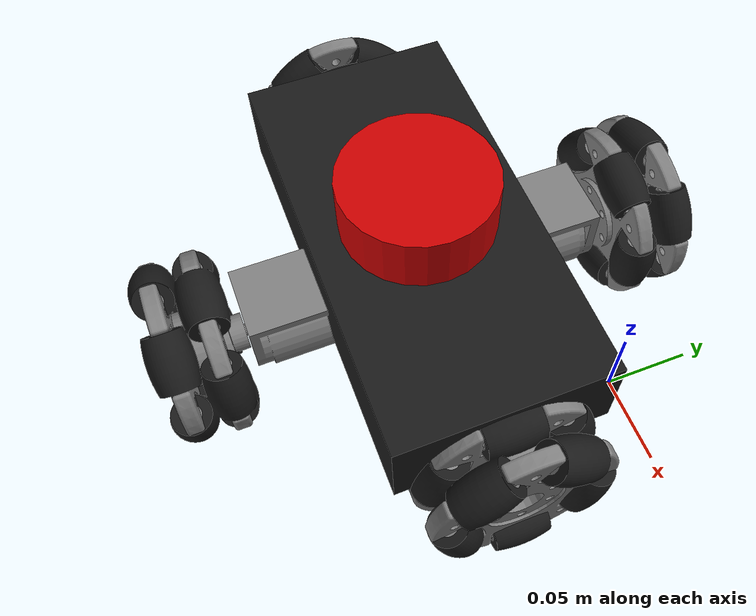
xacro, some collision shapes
<?xml version="1.0"?>
<robot xmlns:xacro="http://www.ros.org/wiki/xacro" name="robot">

  <!-- Include inertial macros (opsional, karena sudah inline di robot_core_highres) -->
  <xacro:include filename="inertial_macros.xacro"/>

  <!-- Core robot definition dengan visual, collision, inertial -->
  <xacro:include filename="robot_core_highres.xacro"/>

</robot>

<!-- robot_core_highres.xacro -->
<robot xmlns:xacro="http://www.ros.org/wiki/xacro">

  <!-- PROPERTIES                                                         -->
  <xacro:property name="scale"         value="2.0"/>

  <!-- Chassis -->
  <xacro:property name="chassis_x"     value="${0.14*scale}"/>
  <xacro:property name="chassis_y"     value="${0.07*scale}"/>
  <xacro:property name="chassis_z"     value="${0.03*scale}"/>
  <xacro:property name="chassis_mass"  value="5.0"/>

  <!-- Wheel -->
  <xacro:property name="wheel_radius"  value="${0.0165*scale}"/>
  <xacro:property name="wheel_width"   value="${0.02*scale}"/>
  <xacro:property name="wheel_mass"    value="0.3"/>

  <!-- Motor (massa saja, tidak ada collision) -->
  <xacro:property name="motor_x"       value="${0.04*scale}"/>
  <xacro:property name="motor_y"       value="${0.04*scale}"/>
  <xacro:property name="motor_z"       value="${0.04*scale}"/>
  <xacro:property name="motor_mass"    value="0.2"/>

  <xacro:property name="footprint_cx"  value="-0.13246"/>
  <xacro:property name="footprint_cy"  value="-0.06868"/>

  <!-- INERTIA MACROS                                                     -->
  <xacro:macro name="inertial_box" params="mass x y z *origin">
    <inertial>
      <xacro:insert_block name="origin"/>
      <mass value="${mass}"/>
      <inertia ixx="${(1/12)*mass*(y*y+z*z)}" ixy="0" ixz="0"
               iyy="${(1/12)*mass*(x*x+z*z)}" iyz="0"
               izz="${(1/12)*mass*(x*x+y*y)}"/>
    </inertial>
  </xacro:macro>

  <xacro:macro name="inertial_cylinder" params="mass length radius *origin">
    <inertial>
      <xacro:insert_block name="origin"/>
      <mass value="${mass}"/>
      <inertia ixx="${(1/12)*mass*(3*radius*radius+length*length)}" ixy="0" ixz="0"
               iyy="${(1/12)*mass*(3*radius*radius+length*length)}" iyz="0"
               izz="${(1/2)*mass*(radius*radius)}"/>
    </inertial>
  </xacro:macro>

  <!-- WHEEL GAZEBO MACRO                                                 -->
  <xacro:macro name="wheel_gazebo" params="link_name fdir mat">
    <gazebo reference="${link_name}">
      <mu1>1.0</mu1>
      <mu2>1.0</mu2>
      <fdir1>${fdir}</fdir1>
      <minDepth>0.001</minDepth>
      <kp>1000000</kp>
      <kd>1.0</kd>
      <gravity>true</gravity>
      <material>${mat}</material>
    </gazebo>
  </xacro:macro>

  <!-- MATERIALS                                                          -->
  <material name="black"><color rgba="0.1 0.1 0.1 1"/></material>
  <material name="grey"><color rgba="0.5 0.5 0.5 1"/></material>
  <material name="white"><color rgba="1.0 1.0 1.0 1"/></material>
  <material name="red"><color rgba="0.8 0.0 0.0 1"/></material>

  <!-- BASE_LINK (dummy link -  tidak ada mass/collision)                  -->
  <link name="base_link"/>

  <!-- CHASSIS                                                            -->
  <joint name="chassis_joint" type="fixed">
    <parent link="base_link"/>
    <child link="chassis"/>
    <origin xyz="0 0 0" rpy="0 0 0"/>
  </joint>

  <link name="chassis">
    <visual>
      <origin xyz="0 0 0" rpy="0 0 0"/>
      <geometry>
        <mesh filename="file:///home/ronnigm/astar_ws/src/robot_description/meshes/base_link.STL"
              scale="${scale} ${scale} ${scale}"/>
      </geometry>
      <material name="black"/>
    </visual>

    <collision>
      <origin xyz="${footprint_cx} ${footprint_cy} 0" rpy="0 0 0"/>
      <geometry>
        <box size="${chassis_x} ${chassis_y} ${chassis_z}"/>
      </geometry>
    </collision>

    <inertial>
      <origin xyz="${footprint_cx} ${footprint_cy} 0" rpy="0 0 0"/>
      <mass value="${chassis_mass}"/>
      <inertia ixx="0.05" ixy="0.0" ixz="0.0"
               iyy="0.10" iyz="0.0"
               izz="0.10"/>
    </inertial>
  </link>

  <gazebo reference="chassis">
    <material>Gazebo/DarkGrey</material>
    <gravity>true</gravity>
    <linearDamping>0.5</linearDamping>
    <angularDamping>0.5</angularDamping>
  </gazebo>

  <!-- LIDAR                                                              -->
  <link name="laser">
    <visual>
      <origin xyz="0 0 0" rpy="0 0 0"/>
      <geometry>
        <cylinder radius="${0.025*scale}" length="${0.02*scale}"/>
      </geometry>
      <material name="red"/>
    </visual>
    <!-- TIDAK ADA COLLISION -  disengaja untuk mencegah extra constraint -->
    <inertial>
      <origin xyz="0 0 0" rpy="0 0 0"/>
      <mass value="0.1"/>
      <inertia ixx="0.0001" ixy="0" ixz="0"
               iyy="0.0001" iyz="0"
               izz="0.0001"/>
    </inertial>
  </link>

  <joint name="laser_joint" type="fixed">
    <parent link="chassis"/>   <!-- parent = chassis, bukan base_link -->
    <child link="laser"/>
    <origin xyz="${footprint_cx} ${footprint_cy} 0.05" rpy="0 0 0"/>
    <!--
    rpy="0 0 0": lidar scan +X = depan robot.
    Jika di RViz scan terlihat terbalik 180deg: ganti rpy="0 0 3.14159"
    Jika di RViz scan terlihat rotasi 90deg:   ganti rpy="0 0 1.5708"
    -->
  </joint>

  <gazebo reference="laser">
    <material>Gazebo/Red</material>
    <gravity>false</gravity>  <!-- Lidar fixed ke chassis, gravity = tidak perlu -->
    <sensor name="lidar" type="ray">
      <pose>0 0 0 0 0 0</pose>
      <visualize>true</visualize>
      <update_rate>5</update_rate>
      <range>
        <min>0.1</min>
        <max>5.0</max>
      </range>
      <ray>
        <scan>
          <horizontal>
            <samples>360</samples>
            <resolution>1</resolution>
            <min_angle>-3.14159265</min_angle>
            <max_angle>3.14159265</max_angle>
          </horizontal>
        </scan>
        <range>
          <min>0.12</min>
          <max>8.0</max>
          <resolution>0.01</resolution>
        </range>
        <noise>
          <type>gaussian</type>
          <mean>0.0</mean>
          <stddev>0.005</stddev>
        </noise>
      </ray>
      <plugin name="laser_controller" filename="libgazebo_ros_ray_sensor.so">
        <ros>
          <argument>~/out:=scan</argument>
        </ros>
        <output_type>sensor_msgs/LaserScan</output_type>
        <frame_name>laser</frame_name>
      </plugin>
    </sensor>
  </gazebo>

  <!-- MOTOR 1 -  X- (KIRI DEPAN)                                         -->
  <joint name="motor1_joint" type="fixed">
    <parent link="chassis"/>
    <child link="motor1"/>
    <origin xyz="${-0.10447*scale} ${-0.034453*scale} 0" rpy="0 0 0"/>
  </joint>

  <!-- Motor: visual saja, TIDAK ADA collision (motor tidak menyentuh ground) -->
  <link name="motor1">
    <visual>
      <origin xyz="0 0 0" rpy="0 0 0"/>
      <geometry>
        <mesh filename="file:///home/ronnigm/astar_ws/src/robot_description/meshes/motor1_Link.STL"
              scale="${scale} ${scale} ${scale}"/>
      </geometry>
      <material name="grey"/>
    </visual>
    <xacro:inertial_box mass="${motor_mass}" x="${motor_x}" y="${motor_y}" z="${motor_z}">
      <origin xyz="0 0 0" rpy="0 0 0"/>
    </xacro:inertial_box>
  </link>

  <gazebo reference="motor1">
    <material>Gazebo/Grey</material>
    <gravity>true</gravity>
  </gazebo>

  <joint name="wheel1_joint" type="continuous">
    <parent link="motor1"/>
    <child link="wheel1"/>
    <origin xyz="${-0.0305*scale} 0 ${-0.0165*scale}" rpy="-1.5708 0 1.5708"/>
    <axis xyz="0 0 1"/>
    <dynamics damping="0.05" friction="0.0"/>
  </joint>

  <link name="wheel1">
    <visual>
      <origin xyz="0 0 0" rpy="0 0 0"/>
      <geometry>
        <mesh filename="file:///home/ronnigm/astar_ws/src/robot_description/meshes/wheel1_Link.STL"
              scale="${scale} ${scale} ${scale}"/>
      </geometry>
      <material name="grey"/>
    </visual>
    <!-- Wheel: SATU-SATUNYA collision body yang menyentuh ground -->
    <collision>
      <origin xyz="0 0 0" rpy="0 0 0"/>
      <geometry>
        <cylinder radius="${wheel_radius}" length="${wheel_width}"/>
      </geometry>
    </collision>
    <xacro:inertial_cylinder mass="${wheel_mass}" length="${wheel_width}" radius="${wheel_radius}">
      <origin xyz="0 0 0" rpy="0 0 0"/>
    </xacro:inertial_cylinder>
  </link>

  <!-- Rubber: visual + inertial saja, ZERO collision (lihat BUG-A fix) -->
  <joint name="rubber1_joint" type="fixed">
    <parent link="wheel1"/>
    <child link="rubber1"/>
    <origin xyz="0 0 0" rpy="0 0 0"/>
  </joint>

  <link name="rubber1">
    <visual>
      <origin xyz="0 0 0" rpy="0 0 0"/>
      <geometry>
        <mesh filename="file:///home/ronnigm/astar_ws/src/robot_description/meshes/rubber1_Link.STL"
              scale="${scale} ${scale} ${scale}"/>
      </geometry>
      <material name="black"/>
    </visual>
    <!-- TIDAK ADA COLLISION pada rubber -  mencegah double constraint -->
    <inertial>
      <origin xyz="0 0 0" rpy="0 0 0"/>
      <mass value="0.05"/>
      <inertia ixx="0.00002" ixy="0" ixz="0"
               iyy="0.00002" iyz="0"
               izz="0.00004"/>
    </inertial>
  </link>

  <xacro:wheel_gazebo link_name="wheel1" fdir="1 0 0" mat="Gazebo/Grey"/>
  <gazebo reference="rubber1"><material>Gazebo/Black</material></gazebo>

  <!-- MOTOR 2 -  X+ (KANAN DEPAN)                                        -->
  <joint name="motor2_joint" type="fixed">
    <parent link="chassis"/>
    <child link="motor2"/>
    <origin xyz="${-0.02747*scale} ${-0.034453*scale} 0" rpy="0 0 0"/>
  </joint>

  <link name="motor2">
    <visual>
      <origin xyz="0 0 0" rpy="0 0 0"/>
      <geometry>
        <mesh filename="file:///home/ronnigm/astar_ws/src/robot_description/meshes/motor2_Link.STL"
              scale="${scale} ${scale} ${scale}"/>
      </geometry>
      <material name="grey"/>
    </visual>
    <xacro:inertial_box mass="${motor_mass}" x="${motor_x}" y="${motor_y}" z="${motor_z}">
      <origin xyz="0 0 0" rpy="0 0 0"/>
    </xacro:inertial_box>
  </link>

  <gazebo reference="motor2"><material>Gazebo/Grey</material><gravity>true</gravity></gazebo>

  <joint name="wheel2_joint" type="continuous">
    <parent link="motor2"/>
    <child link="wheel2"/>
    <origin xyz="${0.0305*scale} 0 ${-0.0165*scale}" rpy="1.5708 0 1.5708"/>
    <axis xyz="0 0 1"/>
    <dynamics damping="0.05" friction="0.0"/>
  </joint>

  <link name="wheel2">
    <visual>
      <origin xyz="0 0 0" rpy="0 0 0"/>
      <geometry>
        <mesh filename="file:///home/ronnigm/astar_ws/src/robot_description/meshes/wheel2_Link.STL"
              scale="${scale} ${scale} ${scale}"/>
      </geometry>
      <material name="grey"/>
    </visual>
    <collision>
      <origin xyz="0 0 0" rpy="0 0 0"/>
      <geometry>
        <cylinder radius="${wheel_radius}" length="${wheel_width}"/>
      </geometry>
    </collision>
    <xacro:inertial_cylinder mass="${wheel_mass}" length="${wheel_width}" radius="${wheel_radius}">
      <origin xyz="0 0 0" rpy="0 0 0"/>
    </xacro:inertial_cylinder>
  </link>

  <joint name="rubber2_joint" type="fixed">
    <parent link="wheel2"/>
    <child link="rubber2"/>
    <origin xyz="0 0 0" rpy="0 0 0"/>
  </joint>

  <link name="rubber2">
    <visual>
      <origin xyz="0 0 0" rpy="0 0 0"/>
      <geometry>
        <mesh filename="file:///home/ronnigm/astar_ws/src/robot_description/meshes/rubber2_Link.STL"
              scale="${scale} ${scale} ${scale}"/>
      </geometry>
      <material name="black"/>
    </visual>
    <inertial>
      <origin xyz="0 0 0" rpy="0 0 0"/>
      <mass value="0.05"/>
      <inertia ixx="0.00002" ixy="0" ixz="0"
               iyy="0.00002" iyz="0"
               izz="0.00004"/>
    </inertial>
  </link>

  <xacro:wheel_gazebo link_name="wheel2" fdir="1 0 0" mat="Gazebo/Grey"/>
  <gazebo reference="rubber2"><material>Gazebo/Black</material></gazebo>

  <!-- MOTOR 3 -  Y+ (SAMPING KIRI)                                       -->
  <joint name="motor3_joint" type="fixed">
    <parent link="chassis"/>
    <child link="motor3"/>
    <origin xyz="${-0.06700*scale} ${0.004500*scale} 0" rpy="0 0 0"/>
  </joint>

  <link name="motor3">
    <visual>
      <origin xyz="0 0 0" rpy="0 0 0"/>
      <geometry>
        <mesh filename="file:///home/ronnigm/astar_ws/src/robot_description/meshes/motor3_Link.STL"
              scale="${scale} ${scale} ${scale}"/>
      </geometry>
      <material name="grey"/>
    </visual>
    <xacro:inertial_box mass="${motor_mass}" x="${motor_x}" y="${motor_y}" z="${motor_z}">
      <origin xyz="0 0 0" rpy="0 0 0"/>
    </xacro:inertial_box>
  </link>

  <gazebo reference="motor3"><material>Gazebo/Grey</material><gravity>true</gravity></gazebo>

  <joint name="wheel3_joint" type="continuous">
    <parent link="motor3"/>
    <child link="wheel3"/>
    <origin xyz="0 ${0.0305*scale} ${-0.0165*scale}" rpy="-1.5708 0 0"/>
    <axis xyz="0 0 1"/>
    <dynamics damping="0.05" friction="0.0"/>
  </joint>

  <link name="wheel3">
    <visual>
      <origin xyz="0 0 0" rpy="0 0 0"/>
      <geometry>
        <mesh filename="file:///home/ronnigm/astar_ws/src/robot_description/meshes/wheel3_Link.STL"
              scale="${scale} ${scale} ${scale}"/>
      </geometry>
      <material name="grey"/>
    </visual>
    <collision>
      <origin xyz="0 0 0" rpy="0 0 0"/>
      <geometry>
        <cylinder radius="${wheel_radius}" length="${wheel_width}"/>
      </geometry>
    </collision>
    <xacro:inertial_cylinder mass="${wheel_mass}" length="${wheel_width}" radius="${wheel_radius}">
      <origin xyz="0 0 0" rpy="0 0 0"/>
    </xacro:inertial_cylinder>
  </link>

  <joint name="rubber3_joint" type="fixed">
    <parent link="wheel3"/>
    <child link="rubber3"/>
    <origin xyz="0 0 0" rpy="0 0 0"/>
  </joint>

  <link name="rubber3">
    <visual>
      <origin xyz="0 0 0" rpy="0 0 0"/>
      <geometry>
        <mesh filename="file:///home/ronnigm/astar_ws/src/robot_description/meshes/rubber3_Link.STL"
              scale="${scale} ${scale} ${scale}"/>
      </geometry>
      <material name="black"/>
    </visual>
    <inertial>
      <origin xyz="0 0 0" rpy="0 0 0"/>
      <mass value="0.05"/>
      <inertia ixx="0.00002" ixy="0" ixz="0"
               iyy="0.00002" iyz="0"
               izz="0.00004"/>
    </inertial>
  </link>

  <xacro:wheel_gazebo link_name="wheel3" fdir="0 1 0" mat="Gazebo/Grey"/>
  <gazebo reference="rubber3"><material>Gazebo/Black</material></gazebo>

  <!-- MOTOR 4 -  Y- (SAMPING KANAN)                                      -->
  <joint name="motor4_joint" type="fixed">
    <parent link="chassis"/>
    <child link="motor4"/>
    <origin xyz="${-0.065971*scale} ${-0.072953*scale} 0" rpy="0 0 0"/>
  </joint>

  <link name="motor4">
    <visual>
      <origin xyz="0 0 0" rpy="0 0 0"/>
      <geometry>
        <mesh filename="file:///home/ronnigm/astar_ws/src/robot_description/meshes/motor4_Link.STL"
              scale="${scale} ${scale} ${scale}"/>
      </geometry>
      <material name="grey"/>
    </visual>
    <xacro:inertial_box mass="${motor_mass}" x="${motor_x}" y="${motor_y}" z="${motor_z}">
      <origin xyz="0 0 0" rpy="0 0 0"/>
    </xacro:inertial_box>
  </link>

  <gazebo reference="motor4"><material>Gazebo/Grey</material><gravity>true</gravity></gazebo>

  <joint name="wheel4_joint" type="continuous">
    <parent link="motor4"/>
    <child link="wheel4"/>
    <origin xyz="0 ${-0.0305*scale} ${-0.0165*scale}" rpy="1.5708 0 0"/>
    <axis xyz="0 0 1"/>
    <dynamics damping="0.05" friction="0.0"/>
  </joint>

  <link name="wheel4">
    <visual>
      <origin xyz="0 0 0" rpy="0 0 0"/>
      <geometry>
        <mesh filename="file:///home/ronnigm/astar_ws/src/robot_description/meshes/wheel4_Link.STL"
              scale="${scale} ${scale} ${scale}"/>
      </geometry>
      <material name="grey"/>
    </visual>
    <collision>
      <origin xyz="0 0 0" rpy="0 0 0"/>
      <geometry>
        <cylinder radius="${wheel_radius}" length="${wheel_width}"/>
      </geometry>
    </collision>
    <xacro:inertial_cylinder mass="${wheel_mass}" length="${wheel_width}" radius="${wheel_radius}">
      <origin xyz="0 0 0" rpy="0 0 0"/>
    </xacro:inertial_cylinder>
  </link>

  <joint name="rubber4_joint" type="fixed">
    <parent link="wheel4"/>
    <child link="rubber4"/>
    <origin xyz="0 0 0" rpy="0 0 0"/>
  </joint>

  <link name="rubber4">
    <visual>
      <origin xyz="0 0 0" rpy="0 0 0"/>
      <geometry>
        <mesh filename="file:///home/ronnigm/astar_ws/src/robot_description/meshes/rubber4_Link.STL"
              scale="${scale} ${scale} ${scale}"/>
      </geometry>
      <material name="black"/>
    </visual>
    <inertial>
      <origin xyz="0 0 0" rpy="0 0 0"/>
      <mass value="0.05"/>
      <inertia ixx="0.00002" ixy="0" ixz="0"
               iyy="0.00002" iyz="0"
               izz="0.00004"/>
    </inertial>
  </link>

  <xacro:wheel_gazebo link_name="wheel4" fdir="0 1 0" mat="Gazebo/Grey"/>
  <gazebo reference="rubber4"><material>Gazebo/Black</material></gazebo>

  <!-- GAZEBO OMNI PLUGIN                                                 -->
  <gazebo>
    <plugin name="gazebo_ros_planar_move" filename="libgazebo_ros_planar_move.so">
      <ros>
        <namespace>/</namespace>
      </ros>
      <update_rate>50</update_rate>
      <publish_rate>10</publish_rate>
      <command_topic>cmd_vel</command_topic>
      <odometry_topic>odom</odometry_topic>
      <odometry_frame>odom</odometry_frame>
      <robot_base_frame>base_link</robot_base_frame>
      <publish_odom>true</publish_odom>
      <publish_odom_tf>true</publish_odom_tf>
    </plugin>
  </gazebo>

</robot>
